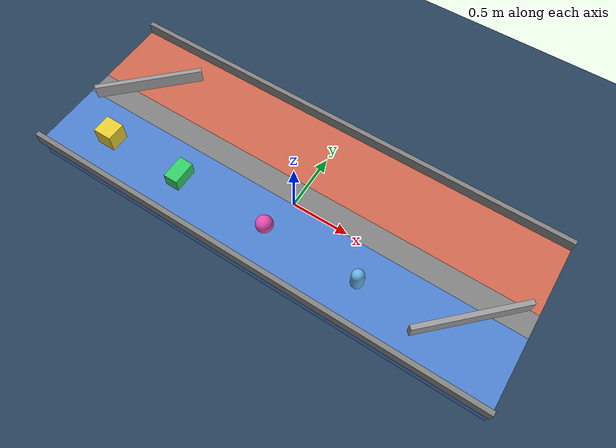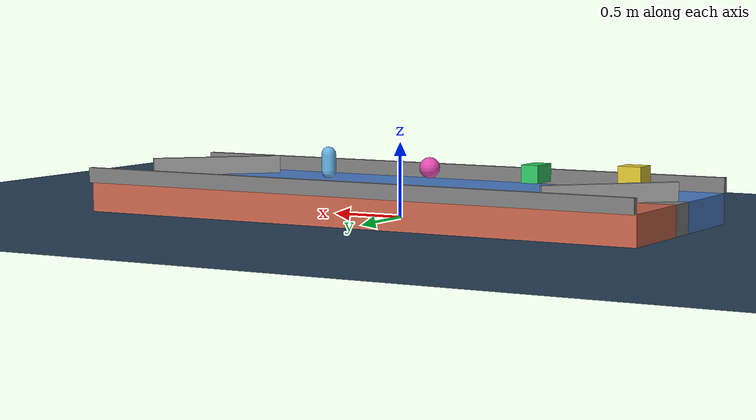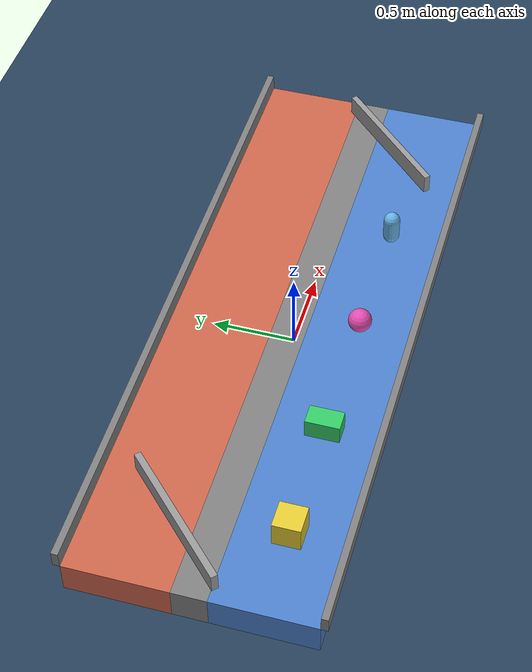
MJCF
<mujoco model="surfacevel conveyor">
  <!-- two opposed conveyor belts made of static geoms with surfacevel:
       objects ride the blue belt +x, the red belt returns them -x -->

  <visual>
    <headlight diffuse=".8 .8 .8" ambient=".2 .2 .2"/>
  </visual>

  <asset>
    <texture type="skybox" builtin="gradient" rgb1=".3 .5 .7" rgb2="0 0 0" width="32" height="512"/>
    <texture name="grid" type="2d" builtin="checker" rgb1=".1 .2 .3" rgb2=".2 .3 .4" width="300" height="300"/>
    <material name="grid" texture="grid" texrepeat="8 8" reflectance=".2"/>
    <material name="beltplus" rgba=".3 .5 .8 1"/>
    <material name="beltminus" rgba=".8 .4 .3 1"/>
  </asset>

  <worldbody>
    <light pos="0 0 3" dir="0 0 -1"/>
    <geom name="floor" type="plane" size="4 4 .1" material="grid"/>

    <!-- belt running +x, top surface at z=0.2 -->
    <geom name="belt1" type="box" size="2 .3 .1" pos="0 -.4 .1" material="beltplus" surfacevel=".8 0 0  0 0 0"/>

    <geom name="seperator" type="box" size="2 .1 .1" pos="0 0 .1" condim="1" priority="1"/>

    <!-- belt running -x, top surface at z=0.2 -->
    <geom name="belt2" type="box" size="2 .3 .1" pos="0 .4 .1" material="beltminus" surfacevel="-.8 0 0  0 0 0"/>

    <!-- guard rails on the outer edges -->
    <geom name="rail1" type="box" size="2 .02 .05" pos="0 -.72 .25" rgba=".5 .5 .5 1"/>
    <geom name="rail2" type="box" size="2 .02 .05" pos="0 .72 .25" rgba=".5 .5 .5 1"/>

    <!-- deflectors: kick objects from one belt to the other at each end -->
    <geom name="turn1" type="box" size=".02 .45 .06" pos="1.6 -.2 .26" euler="0 0 -45" rgba=".6 .6 .6 1"/>
    <geom name="turn2" type="box" size=".02 .45 .06" pos="-1.6 .2 .26" euler="0 0 -45" rgba=".6 .6 .6 1"/>

    <!-- cargo -->
    <body name="box1" pos="-1.5 -.4 .3">
      <freejoint/>
      <geom type="box" size=".08 .08 .08" rgba=".9 .8 .2 1" mass=".3"/>
    </body>
    <body name="box2" pos="-.8 -.4 .3">
      <freejoint/>
      <geom type="box" size=".06 .1 .06" rgba=".2 .8 .4 1" mass=".3"/>
    </body>
    <body name="ball" pos="0 -.4 .3">
      <freejoint/>
      <geom type="sphere" size=".07" rgba=".9 .3 .7 1" mass=".3"/>
    </body>
    <body name="pill" pos=".8 -.4 .3">
      <freejoint/>
      <geom type="capsule" size=".05 .06" rgba=".4 .7 .9 1" mass=".3"/>
    </body>
  </worldbody>
</mujoco>
